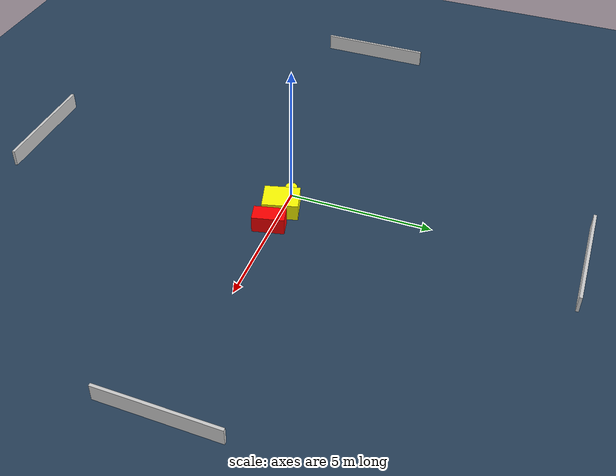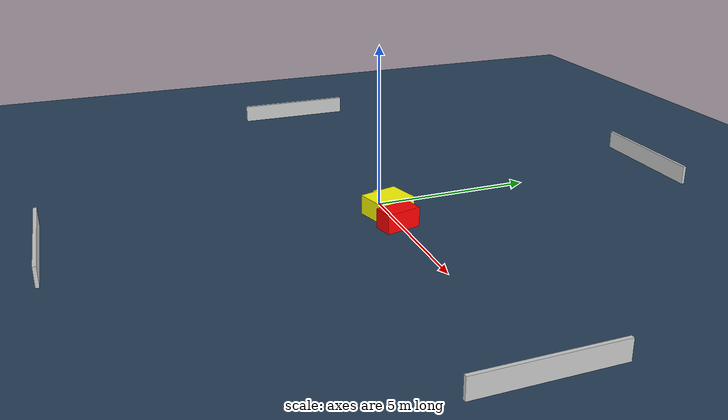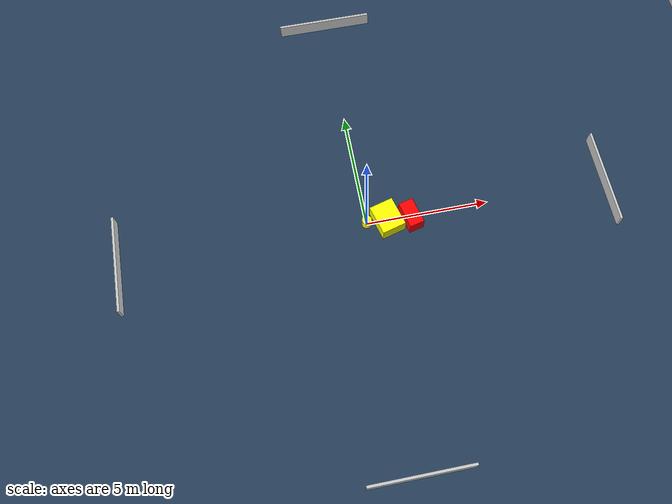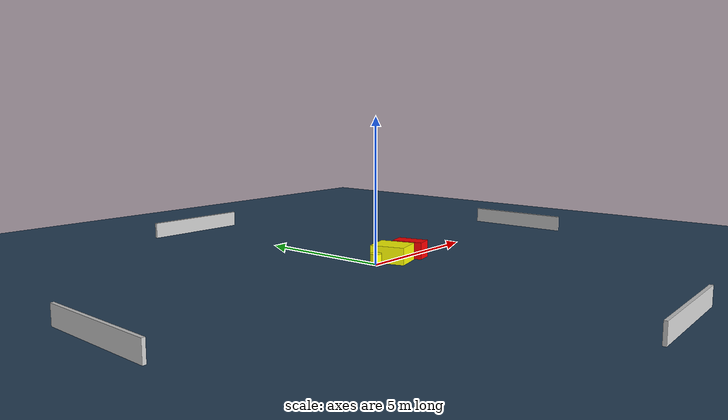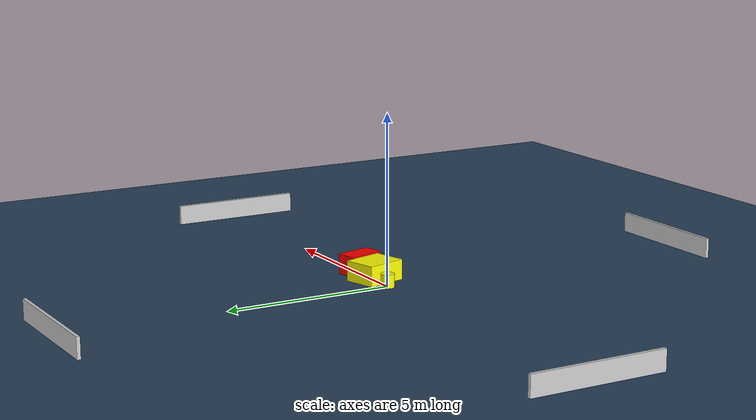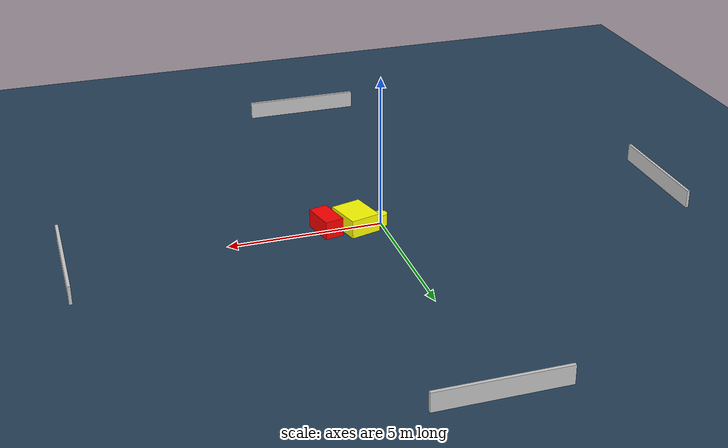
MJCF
<?xml version="1.0" ?>
<mujoco model="generated_environment">
  <option timestep="0.01" integrator="RK4" cone="elliptic"/>
  <default>
    <geom density="1"/>
  </default>
  <asset>
    <texture builtin="gradient" height="3072" name="skybox" rgb1="0.3 0.5 0.7" rgb2="0 0 0" type="skybox" width="512"/>
    <texture builtin="checker" height="300" name="groundplane" rgb1="0.2 0.3 0.4" rgb2="0.1 0.2 0.3" type="2d" width="300"/>
    <material name="groundplane" reflectance="0.2" texrepeat="5 5" texture="groundplane"/>
  </asset>
  <worldbody>
    <light dir="0 0 -1" directional="true" pos="0 0 1.5"/>
    <geom condim="3" friction="0.5 0.005 0.001" material="groundplane" name="floor" pos="0 0 0" size="0 0 0.05" type="plane"/>
    <body name="walls">
      <geom name="wall_1" condim="4" pos="-10.0 0.0 0.3" rgba="0.800000011920929 0.800000011920929 0.800000011920929 1.0" size="0.05 2.0 0.3" type="box"/>
      <geom name="wall_2" condim="4" pos="10.0 0.0 0.3" rgba="0.800000011920929 0.800000011920929 0.800000011920929 1.0" size="0.05 2.0 0.3" type="box"/>
      <geom name="wall_3" condim="4" pos="0.0 -10.0 0.3" rgba="0.800000011920929 0.800000011920929 0.800000011920929 1.0" size="2.0 0.05 0.3" type="box"/>
      <geom name="wall_4" condim="4" pos="0.0 10.0 0.3" rgba="0.800000011920929 0.800000011920929 0.800000011920929 1.0" size="2.0 0.05 0.3" type="box"/>
    </body>
    <body name="robot">
      <joint name="joint_x" type="slide" pos="0 0 0" axis="1 0 0"/>
      <joint name="joint_y" type="slide" pos="0 0 0" axis="0 1 0"/>
      <geom name="robot" type="cylinder" pos="0.0 0.0 0.2" size="0.2 0.2 0.0" mass="5.0" friction="1.0 0.005 0.0001" condim="4" rgba="1.0 1.0 0.0 1.0"/>
    </body>
    <body name="obstacle_1_movable">
      <geom name="obstacle_1_movable" condim="4" pos="0.8340219080851665 -0.05516277174269037 0.3" euler="0 0 105.45120714502731" friction="0.0 0.005 0.001" rgba="1.0 1.0 0.0 1.0" size="0.6170324475826096 0.5007543399721515 0.3" type="box" mass="0.1"/>
      <joint type="free"/>
    </body>
    <body name="obstacle_2_static">
      <geom name="obstacle_2_static" condim="4" pos="1.797181043437343 -0.11027506151603177 0.3" euler="0 0 13.392838300660772" friction="0.0 0.005 0.001" rgba="1.0 0.0 0.0 1.0" size="0.306866105115884 0.5518959534839779 0.3" type="box"/>
    </body>
  </worldbody>
  <actuator>
    <motor name="actuator_x" joint="joint_x" gear="1" ctrlrange="-1 1"/>
    <motor name="actuator_y" joint="joint_y" gear="1" ctrlrange="-1 1"/>
  </actuator>
</mujoco>
